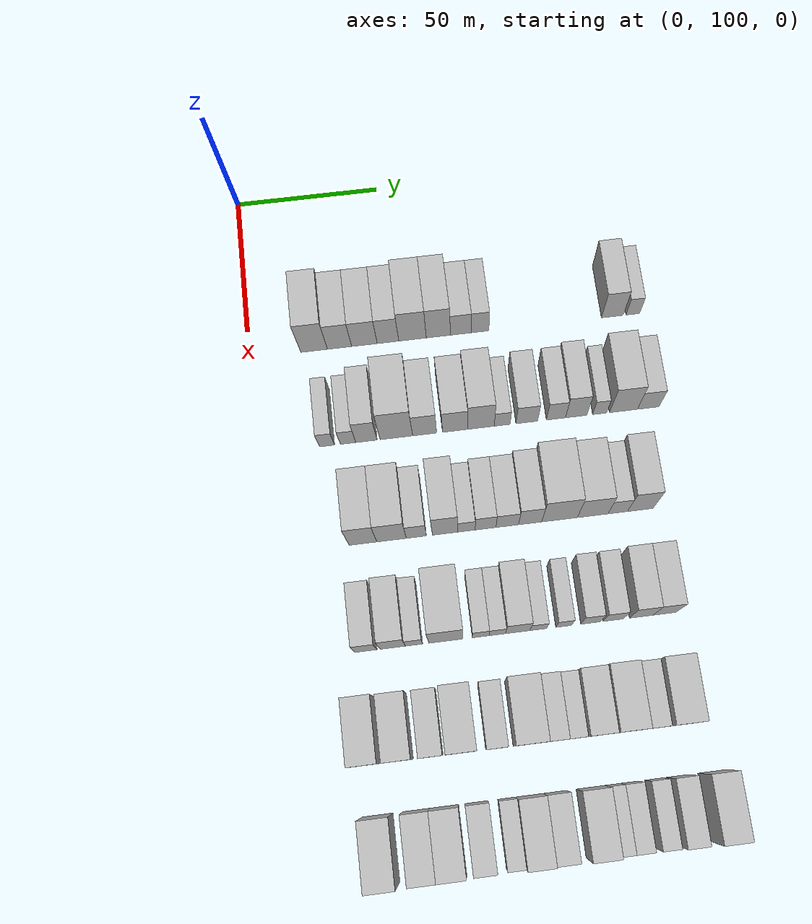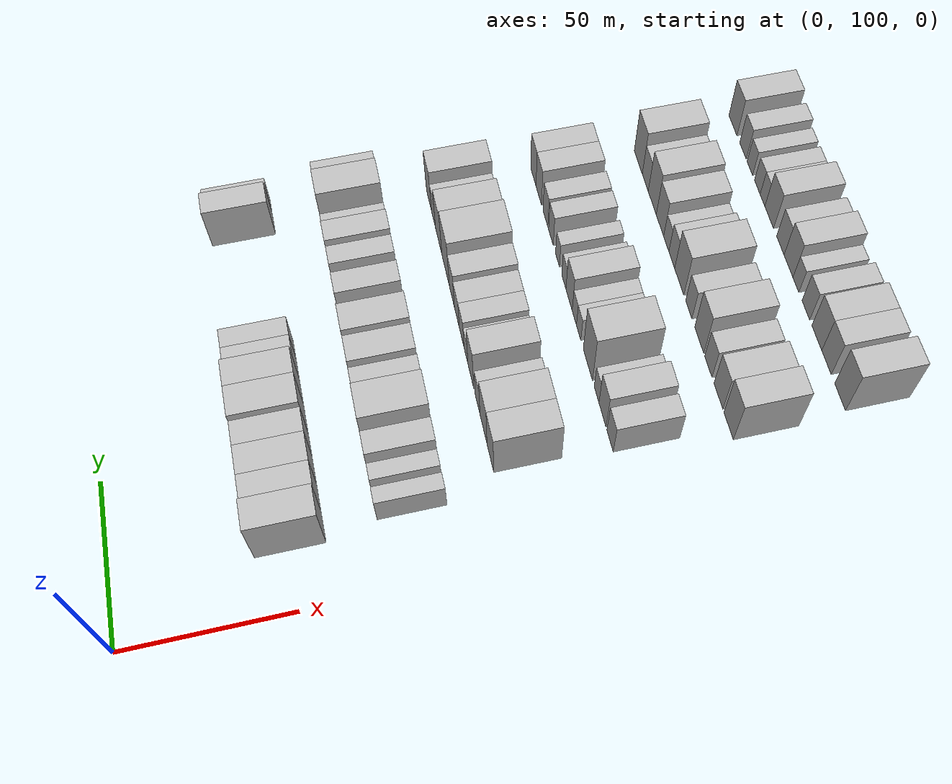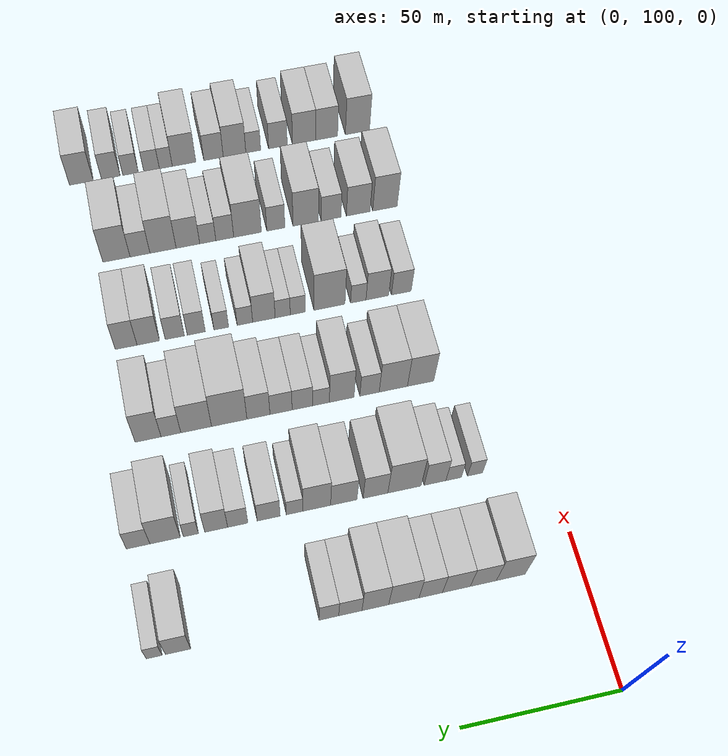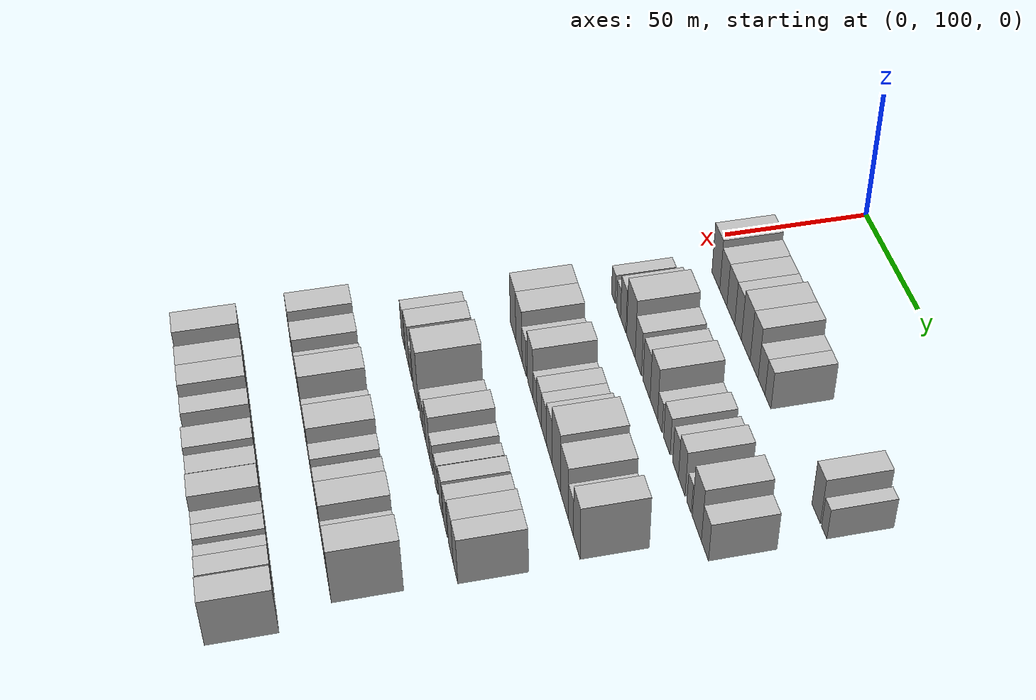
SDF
<sdf version="1.6">
 <world name="default">
  <model name="building_75">
   <static>1</static>
   <pose>50.0000 122.4611 0 0.000000 0.000000 0.000000</pose>
   <link name="link">
    <pose>0 0 10.50 0 0 0</pose>
    <collision name="collision"><geometry><box><size>20.0000 9.2811 21.0000</size></box></geometry></collision>
    <visual name="visual">
     <cast_shadows>0</cast_shadows>
     <geometry><box><size>20.0000 9.2811 21.0000</size></box></geometry>
     <material>
      <script>
       <uri>model://HANNAS_wall/materials/scripts</uri>
       <uri>model://HANNAS_wall/materials/textures</uri>
       <name>vrc/HANNAS_wall</name>
      </script>
     </material>
    </visual>
   </link>
  </model>
  <model name="building_76">
   <static>1</static>
   <pose>50.0000 131.3030 0 0.000000 0.000000 0.000000</pose>
   <link name="link">
    <pose>0 0 9.00 0 0 0</pose>
    <collision name="collision"><geometry><box><size>20.0000 8.4025 18.0000</size></box></geometry></collision>
    <visual name="visual">
     <cast_shadows>0</cast_shadows>
     <geometry><box><size>20.0000 8.4025 18.0000</size></box></geometry>
     <material>
      <script>
       <uri>model://HANNAS_wall/materials/scripts</uri>
       <uri>model://HANNAS_wall/materials/textures</uri>
       <name>vrc/HANNAS_wall</name>
      </script>
     </material>
    </visual>
   </link>
  </model>
  <model name="building_77">
   <static>1</static>
   <pose>50.0000 139.9452 0 0.000000 0.000000 0.000000</pose>
   <link name="link">
    <pose>0 0 9.00 0 0 0</pose>
    <collision name="collision"><geometry><box><size>20.0000 8.8820 18.0000</size></box></geometry></collision>
    <visual name="visual">
     <cast_shadows>0</cast_shadows>
     <geometry><box><size>20.0000 8.8820 18.0000</size></box></geometry>
     <material>
      <script>
       <uri>model://HANNAS_wall/materials/scripts</uri>
       <uri>model://HANNAS_wall/materials/textures</uri>
       <name>vrc/HANNAS_wall</name>
      </script>
     </material>
    </visual>
   </link>
  </model>
  <model name="building_78">
   <static>1</static>
   <pose>50.0000 148.1457 0 0.000000 0.000000 0.000000</pose>
   <link name="link">
    <pose>0 0 9.00 0 0 0</pose>
    <collision name="collision"><geometry><box><size>20.0000 7.5189 18.0000</size></box></geometry></collision>
    <visual name="visual">
     <cast_shadows>0</cast_shadows>
     <geometry><box><size>20.0000 7.5189 18.0000</size></box></geometry>
     <material>
      <script>
       <uri>model://HANNAS_wall/materials/scripts</uri>
       <uri>model://HANNAS_wall/materials/textures</uri>
       <name>vrc/HANNAS_wall</name>
      </script>
     </material>
    </visual>
   </link>
  </model>
  <model name="building_79">
   <static>1</static>
   <pose>50.0000 156.6984 0 0.000000 0.000000 0.000000</pose>
   <link name="link">
    <pose>0 0 10.50 0 0 0</pose>
    <collision name="collision"><geometry><box><size>20.0000 9.5865 21.0000</size></box></geometry></collision>
    <visual name="visual">
     <cast_shadows>0</cast_shadows>
     <geometry><box><size>20.0000 9.5865 21.0000</size></box></geometry>
     <material>
      <script>
       <uri>model://HANNAS_wall/materials/scripts</uri>
       <uri>model://HANNAS_wall/materials/textures</uri>
       <name>vrc/HANNAS_wall</name>
      </script>
     </material>
    </visual>
   </link>
  </model>
  <model name="building_80">
   <static>1</static>
   <pose>50.0000 165.7298 0 0.000000 0.000000 0.000000</pose>
   <link name="link">
    <pose>0 0 10.50 0 0 0</pose>
    <collision name="collision"><geometry><box><size>20.0000 8.4762 21.0000</size></box></geometry></collision>
    <visual name="visual">
     <cast_shadows>0</cast_shadows>
     <geometry><box><size>20.0000 8.4762 21.0000</size></box></geometry>
     <material>
      <script>
       <uri>model://HANNAS_wall/materials/scripts</uri>
       <uri>model://HANNAS_wall/materials/textures</uri>
       <name>vrc/HANNAS_wall</name>
      </script>
     </material>
    </visual>
   </link>
  </model>
  <model name="building_81">
   <static>1</static>
   <pose>50.0000 173.6136 0 0.000000 0.000000 0.000000</pose>
   <link name="link">
    <pose>0 0 7.50 0 0 0</pose>
    <collision name="collision"><geometry><box><size>20.0000 7.2915 15.0000</size></box></geometry></collision>
    <visual name="visual">
     <cast_shadows>0</cast_shadows>
     <geometry><box><size>20.0000 7.2915 15.0000</size></box></geometry>
     <material>
      <script>
       <uri>model://HANNAS_wall/materials/scripts</uri>
       <uri>model://HANNAS_wall/materials/textures</uri>
       <name>vrc/HANNAS_wall</name>
      </script>
     </material>
    </visual>
   </link>
  </model>
  <model name="building_82">
   <static>1</static>
   <pose>50.0000 180.3272 0 0.000000 0.000000 0.000000</pose>
   <link name="link">
    <pose>0 0 7.50 0 0 0</pose>
    <collision name="collision"><geometry><box><size>20.0000 6.1356 15.0000</size></box></geometry></collision>
    <visual name="visual">
     <cast_shadows>0</cast_shadows>
     <geometry><box><size>20.0000 6.1356 15.0000</size></box></geometry>
     <material>
      <script>
       <uri>model://HANNAS_wall/materials/scripts</uri>
       <uri>model://HANNAS_wall/materials/textures</uri>
       <name>vrc/HANNAS_wall</name>
      </script>
     </material>
    </visual>
   </link>
  </model>
  <model name="building_83">
   <static>1</static>
   <pose>50.0000 226.9549 0 0.000000 0.000000 0.000000</pose>
   <link name="link">
    <pose>0 0 9.00 0 0 0</pose>
    <collision name="collision"><geometry><box><size>20.0000 7.7066 18.0000</size></box></geometry></collision>
    <visual name="visual">
     <cast_shadows>0</cast_shadows>
     <geometry><box><size>20.0000 7.7066 18.0000</size></box></geometry>
     <material>
      <script>
       <uri>model://HANNAS_wall/materials/scripts</uri>
       <uri>model://HANNAS_wall/materials/textures</uri>
       <name>vrc/HANNAS_wall</name>
      </script>
     </material>
    </visual>
   </link>
  </model>
  <model name="building_84">
   <static>1</static>
   <pose>50.0000 234.2229 0 0.000000 0.000000 0.000000</pose>
   <link name="link">
    <pose>0 0 6.00 0 0 0</pose>
    <collision name="collision"><geometry><box><size>20.0000 4.8296 12.0000</size></box></geometry></collision>
    <visual name="visual">
     <cast_shadows>0</cast_shadows>
     <geometry><box><size>20.0000 4.8296 12.0000</size></box></geometry>
     <material>
      <script>
       <uri>model://HANNAS_wall/materials/scripts</uri>
       <uri>model://HANNAS_wall/materials/textures</uri>
       <name>vrc/HANNAS_wall</name>
      </script>
     </material>
    </visual>
   </link>
  </model>
  <model name="building_196">
   <static>1</static>
   <pose>85.0000 123.8743 0 0.000000 0.000000 0.000000</pose>
   <link name="link">
    <pose>0 0 6.00 0 0 0</pose>
    <collision name="collision"><geometry><box><size>20.0000 5.0671 12.0000</size></box></geometry></collision>
    <visual name="visual">
     <cast_shadows>0</cast_shadows>
     <geometry><box><size>20.0000 5.0671 12.0000</size></box></geometry>
     <material>
      <script>
       <uri>model://HANNAS_wall/materials/scripts</uri>
       <uri>model://HANNAS_wall/materials/textures</uri>
       <name>vrc/HANNAS_wall</name>
      </script>
     </material>
    </visual>
   </link>
  </model>
  <model name="building_197">
   <static>1</static>
   <pose>85.0000 131.0005 0 0.000000 0.000000 0.000000</pose>
   <link name="link">
    <pose>0 0 6.00 0 0 0</pose>
    <collision name="collision"><geometry><box><size>20.0000 5.1854 12.0000</size></box></geometry></collision>
    <visual name="visual">
     <cast_shadows>0</cast_shadows>
     <geometry><box><size>20.0000 5.1854 12.0000</size></box></geometry>
     <material>
      <script>
       <uri>model://HANNAS_wall/materials/scripts</uri>
       <uri>model://HANNAS_wall/materials/textures</uri>
       <name>vrc/HANNAS_wall</name>
      </script>
     </material>
    </visual>
   </link>
  </model>
  <model name="building_198">
   <static>1</static>
   <pose>85.0000 137.2162 0 0.000000 0.000000 0.000000</pose>
   <link name="link">
    <pose>0 0 9.00 0 0 0</pose>
    <collision name="collision"><geometry><box><size>20.0000 7.2460 18.0000</size></box></geometry></collision>
    <visual name="visual">
     <cast_shadows>0</cast_shadows>
     <geometry><box><size>20.0000 7.2460 18.0000</size></box></geometry>
     <material>
      <script>
       <uri>model://HANNAS_wall/materials/scripts</uri>
       <uri>model://HANNAS_wall/materials/textures</uri>
       <name>vrc/HANNAS_wall</name>
      </script>
     </material>
    </visual>
   </link>
  </model>
  <model name="building_199">
   <static>1</static>
   <pose>85.0000 147.3640 0 0.000000 0.000000 0.000000</pose>
   <link name="link">
    <pose>0 0 12.00 0 0 0</pose>
    <collision name="collision"><geometry><box><size>20.0000 11.0495 24.0000</size></box></geometry></collision>
    <visual name="visual">
     <cast_shadows>0</cast_shadows>
     <geometry><box><size>20.0000 11.0495 24.0000</size></box></geometry>
     <material>
      <script>
       <uri>model://HANNAS_wall/materials/scripts</uri>
       <uri>model://HANNAS_wall/materials/textures</uri>
       <name>vrc/HANNAS_wall</name>
      </script>
     </material>
    </visual>
   </link>
  </model>
  <model name="building_200">
   <static>1</static>
   <pose>85.0000 156.9674 0 0.000000 0.000000 0.000000</pose>
   <link name="link">
    <pose>0 0 9.00 0 0 0</pose>
    <collision name="collision"><geometry><box><size>20.0000 8.1573 18.0000</size></box></geometry></collision>
    <visual name="visual">
     <cast_shadows>0</cast_shadows>
     <geometry><box><size>20.0000 8.1573 18.0000</size></box></geometry>
     <material>
      <script>
       <uri>model://HANNAS_wall/materials/scripts</uri>
       <uri>model://HANNAS_wall/materials/textures</uri>
       <name>vrc/HANNAS_wall</name>
      </script>
     </material>
    </visual>
   </link>
  </model>
  <model name="building_201">
   <static>1</static>
   <pose>85.0000 167.3625 0 0.000000 0.000000 0.000000</pose>
   <link name="link">
    <pose>0 0 9.00 0 0 0</pose>
    <collision name="collision"><geometry><box><size>20.0000 8.6329 18.0000</size></box></geometry></collision>
    <visual name="visual">
     <cast_shadows>0</cast_shadows>
     <geometry><box><size>20.0000 8.6329 18.0000</size></box></geometry>
     <material>
      <script>
       <uri>model://HANNAS_wall/materials/scripts</uri>
       <uri>model://HANNAS_wall/materials/textures</uri>
       <name>vrc/HANNAS_wall</name>
      </script>
     </material>
    </visual>
   </link>
  </model>
  <model name="building_202">
   <static>1</static>
   <pose>85.0000 176.1991 0 0.000000 0.000000 0.000000</pose>
   <link name="link">
    <pose>0 0 10.50 0 0 0</pose>
    <collision name="collision"><geometry><box><size>20.0000 9.0403 21.0000</size></box></geometry></collision>
    <visual name="visual">
     <cast_shadows>0</cast_shadows>
     <geometry><box><size>20.0000 9.0403 21.0000</size></box></geometry>
     <material>
      <script>
       <uri>model://HANNAS_wall/materials/scripts</uri>
       <uri>model://HANNAS_wall/materials/textures</uri>
       <name>vrc/HANNAS_wall</name>
      </script>
     </material>
    </visual>
   </link>
  </model>
  <model name="building_203">
   <static>1</static>
   <pose>85.0000 183.4195 0 0.000000 0.000000 0.000000</pose>
   <link name="link">
    <pose>0 0 6.00 0 0 0</pose>
    <collision name="collision"><geometry><box><size>20.0000 5.4006 12.0000</size></box></geometry></collision>
    <visual name="visual">
     <cast_shadows>0</cast_shadows>
     <geometry><box><size>20.0000 5.4006 12.0000</size></box></geometry>
     <material>
      <script>
       <uri>model://HANNAS_wall/materials/scripts</uri>
       <uri>model://HANNAS_wall/materials/textures</uri>
       <name>vrc/HANNAS_wall</name>
      </script>
     </material>
    </visual>
   </link>
  </model>
  <model name="building_204">
   <static>1</static>
   <pose>85.0000 191.8361 0 0.000000 0.000000 0.000000</pose>
   <link name="link">
    <pose>0 0 7.50 0 0 0</pose>
    <collision name="collision"><geometry><box><size>20.0000 7.4327 15.0000</size></box></geometry></collision>
    <visual name="visual">
     <cast_shadows>0</cast_shadows>
     <geometry><box><size>20.0000 7.4327 15.0000</size></box></geometry>
     <material>
      <script>
       <uri>model://HANNAS_wall/materials/scripts</uri>
       <uri>model://HANNAS_wall/materials/textures</uri>
       <name>vrc/HANNAS_wall</name>
      </script>
     </material>
    </visual>
   </link>
  </model>
  <model name="building_205">
   <static>1</static>
   <pose>85.0000 201.8072 0 0.000000 0.000000 0.000000</pose>
   <link name="link">
    <pose>0 0 7.50 0 0 0</pose>
    <collision name="collision"><geometry><box><size>20.0000 6.5094 15.0000</size></box></geometry></collision>
    <visual name="visual">
     <cast_shadows>0</cast_shadows>
     <geometry><box><size>20.0000 6.5094 15.0000</size></box></geometry>
     <material>
      <script>
       <uri>model://HANNAS_wall/materials/scripts</uri>
       <uri>model://HANNAS_wall/materials/textures</uri>
       <name>vrc/HANNAS_wall</name>
      </script>
     </material>
    </visual>
   </link>
  </model>
  <model name="building_206">
   <static>1</static>
   <pose>85.0000 208.7417 0 0.000000 0.000000 0.000000</pose>
   <link name="link">
    <pose>0 0 9.00 0 0 0</pose>
    <collision name="collision"><geometry><box><size>20.0000 7.3595 18.0000</size></box></geometry></collision>
    <visual name="visual">
     <cast_shadows>0</cast_shadows>
     <geometry><box><size>20.0000 7.3595 18.0000</size></box></geometry>
     <material>
      <script>
       <uri>model://HANNAS_wall/materials/scripts</uri>
       <uri>model://HANNAS_wall/materials/textures</uri>
       <name>vrc/HANNAS_wall</name>
      </script>
     </material>
    </visual>
   </link>
  </model>
  <model name="building_207">
   <static>1</static>
   <pose>85.0000 216.8229 0 0.000000 0.000000 0.000000</pose>
   <link name="link">
    <pose>0 0 6.00 0 0 0</pose>
    <collision name="collision"><geometry><box><size>20.0000 4.8029 12.0000</size></box></geometry></collision>
    <visual name="visual">
     <cast_shadows>0</cast_shadows>
     <geometry><box><size>20.0000 4.8029 12.0000</size></box></geometry>
     <material>
      <script>
       <uri>model://HANNAS_wall/materials/scripts</uri>
       <uri>model://HANNAS_wall/materials/textures</uri>
       <name>vrc/HANNAS_wall</name>
      </script>
     </material>
    </visual>
   </link>
  </model>
  <model name="building_208">
   <static>1</static>
   <pose>85.0000 225.0727 0 0.000000 0.000000 0.000000</pose>
   <link name="link">
    <pose>0 0 10.50 0 0 0</pose>
    <collision name="collision"><geometry><box><size>20.0000 9.6968 21.0000</size></box></geometry></collision>
    <visual name="visual">
     <cast_shadows>0</cast_shadows>
     <geometry><box><size>20.0000 9.6968 21.0000</size></box></geometry>
     <material>
      <script>
       <uri>model://HANNAS_wall/materials/scripts</uri>
       <uri>model://HANNAS_wall/materials/textures</uri>
       <name>vrc/HANNAS_wall</name>
      </script>
     </material>
    </visual>
   </link>
  </model>
  <model name="building_209">
   <static>1</static>
   <pose>85.0000 233.6376 0 0.000000 0.000000 0.000000</pose>
   <link name="link">
    <pose>0 0 7.50 0 0 0</pose>
    <collision name="collision"><geometry><box><size>20.0000 7.4331 15.0000</size></box></geometry></collision>
    <visual name="visual">
     <cast_shadows>0</cast_shadows>
     <geometry><box><size>20.0000 7.4331 15.0000</size></box></geometry>
     <material>
      <script>
       <uri>model://HANNAS_wall/materials/scripts</uri>
       <uri>model://HANNAS_wall/materials/textures</uri>
       <name>vrc/HANNAS_wall</name>
      </script>
     </material>
    </visual>
   </link>
  </model>
  <model name="building_326">
   <static>1</static>
   <pose>120.0000 132.6634 0 0.000000 0.000000 0.000000</pose>
   <link name="link">
    <pose>0 0 10.50 0 0 0</pose>
    <collision name="collision"><geometry><box><size>20.0000 9.1099 21.0000</size></box></geometry></collision>
    <visual name="visual">
     <cast_shadows>0</cast_shadows>
     <geometry><box><size>20.0000 9.1099 21.0000</size></box></geometry>
     <material>
      <script>
       <uri>model://HANNAS_wall/materials/scripts</uri>
       <uri>model://HANNAS_wall/materials/textures</uri>
       <name>vrc/HANNAS_wall</name>
      </script>
     </material>
    </visual>
   </link>
  </model>
  <model name="building_327">
   <static>1</static>
   <pose>120.0000 142.0886 0 0.000000 0.000000 0.000000</pose>
   <link name="link">
    <pose>0 0 10.50 0 0 0</pose>
    <collision name="collision"><geometry><box><size>20.0000 9.7404 21.0000</size></box></geometry></collision>
    <visual name="visual">
     <cast_shadows>0</cast_shadows>
     <geometry><box><size>20.0000 9.7404 21.0000</size></box></geometry>
     <material>
      <script>
       <uri>model://HANNAS_wall/materials/scripts</uri>
       <uri>model://HANNAS_wall/materials/textures</uri>
       <name>vrc/HANNAS_wall</name>
      </script>
     </material>
    </visual>
   </link>
  </model>
  <model name="building_328">
   <static>1</static>
   <pose>120.0000 150.2772 0 0.000000 0.000000 0.000000</pose>
   <link name="link">
    <pose>0 0 7.50 0 0 0</pose>
    <collision name="collision"><geometry><box><size>20.0000 6.6367 15.0000</size></box></geometry></collision>
    <visual name="visual">
     <cast_shadows>0</cast_shadows>
     <geometry><box><size>20.0000 6.6367 15.0000</size></box></geometry>
     <material>
      <script>
       <uri>model://HANNAS_wall/materials/scripts</uri>
       <uri>model://HANNAS_wall/materials/textures</uri>
       <name>vrc/HANNAS_wall</name>
      </script>
     </material>
    </visual>
   </link>
  </model>
  <model name="building_329">
   <static>1</static>
   <pose>120.0000 159.8151 0 0.000000 0.000000 0.000000</pose>
   <link name="link">
    <pose>0 0 10.50 0 0 0</pose>
    <collision name="collision"><geometry><box><size>20.0000 8.4390 21.0000</size></box></geometry></collision>
    <visual name="visual">
     <cast_shadows>0</cast_shadows>
     <geometry><box><size>20.0000 8.4390 21.0000</size></box></geometry>
     <material>
      <script>
       <uri>model://HANNAS_wall/materials/scripts</uri>
       <uri>model://HANNAS_wall/materials/textures</uri>
       <name>vrc/HANNAS_wall</name>
      </script>
     </material>
    </visual>
   </link>
  </model>
  <model name="building_330">
   <static>1</static>
   <pose>120.0000 166.8922 0 0.000000 0.000000 0.000000</pose>
   <link name="link">
    <pose>0 0 6.00 0 0 0</pose>
    <collision name="collision"><geometry><box><size>20.0000 5.7152 12.0000</size></box></geometry></collision>
    <visual name="visual">
     <cast_shadows>0</cast_shadows>
     <geometry><box><size>20.0000 5.7152 12.0000</size></box></geometry>
     <material>
      <script>
       <uri>model://HANNAS_wall/materials/scripts</uri>
       <uri>model://HANNAS_wall/materials/textures</uri>
       <name>vrc/HANNAS_wall</name>
      </script>
     </material>
    </visual>
   </link>
  </model>
  <model name="building_331">
   <static>1</static>
   <pose>120.0000 173.2070 0 0.000000 0.000000 0.000000</pose>
   <link name="link">
    <pose>0 0 7.50 0 0 0</pose>
    <collision name="collision"><geometry><box><size>20.0000 6.9143 15.0000</size></box></geometry></collision>
    <visual name="visual">
     <cast_shadows>0</cast_shadows>
     <geometry><box><size>20.0000 6.9143 15.0000</size></box></geometry>
     <material>
      <script>
       <uri>model://HANNAS_wall/materials/scripts</uri>
       <uri>model://HANNAS_wall/materials/textures</uri>
       <name>vrc/HANNAS_wall</name>
      </script>
     </material>
    </visual>
   </link>
  </model>
  <model name="building_332">
   <static>1</static>
   <pose>120.0000 180.4108 0 0.000000 0.000000 0.000000</pose>
   <link name="link">
    <pose>0 0 7.50 0 0 0</pose>
    <collision name="collision"><geometry><box><size>20.0000 7.4933 15.0000</size></box></geometry></collision>
    <visual name="visual">
     <cast_shadows>0</cast_shadows>
     <geometry><box><size>20.0000 7.4933 15.0000</size></box></geometry>
     <material>
      <script>
       <uri>model://HANNAS_wall/materials/scripts</uri>
       <uri>model://HANNAS_wall/materials/textures</uri>
       <name>vrc/HANNAS_wall</name>
      </script>
     </material>
    </visual>
   </link>
  </model>
  <model name="building_333">
   <static>1</static>
   <pose>120.0000 188.0334 0 0.000000 0.000000 0.000000</pose>
   <link name="link">
    <pose>0 0 9.00 0 0 0</pose>
    <collision name="collision"><geometry><box><size>20.0000 7.7519 18.0000</size></box></geometry></collision>
    <visual name="visual">
     <cast_shadows>0</cast_shadows>
     <geometry><box><size>20.0000 7.7519 18.0000</size></box></geometry>
     <material>
      <script>
       <uri>model://HANNAS_wall/materials/scripts</uri>
       <uri>model://HANNAS_wall/materials/textures</uri>
       <name>vrc/HANNAS_wall</name>
      </script>
     </material>
    </visual>
   </link>
  </model>
  <model name="building_334">
   <static>1</static>
   <pose>120.0000 197.8483 0 0.000000 0.000000 0.000000</pose>
   <link name="link">
    <pose>0 0 12.00 0 0 0</pose>
    <collision name="collision"><geometry><box><size>20.0000 11.8780 24.0000</size></box></geometry></collision>
    <visual name="visual">
     <cast_shadows>0</cast_shadows>
     <geometry><box><size>20.0000 11.8780 24.0000</size></box></geometry>
     <material>
      <script>
       <uri>model://HANNAS_wall/materials/scripts</uri>
       <uri>model://HANNAS_wall/materials/textures</uri>
       <name>vrc/HANNAS_wall</name>
      </script>
     </material>
    </visual>
   </link>
  </model>
  <model name="building_335">
   <static>1</static>
   <pose>120.0000 208.9087 0 0.000000 0.000000 0.000000</pose>
   <link name="link">
    <pose>0 0 10.50 0 0 0</pose>
    <collision name="collision"><geometry><box><size>20.0000 10.2428 21.0000</size></box></geometry></collision>
    <visual name="visual">
     <cast_shadows>0</cast_shadows>
     <geometry><box><size>20.0000 10.2428 21.0000</size></box></geometry>
     <material>
      <script>
       <uri>model://HANNAS_wall/materials/scripts</uri>
       <uri>model://HANNAS_wall/materials/textures</uri>
       <name>vrc/HANNAS_wall</name>
      </script>
     </material>
    </visual>
   </link>
  </model>
  <model name="building_336">
   <static>1</static>
   <pose>120.0000 217.3041 0 0.000000 0.000000 0.000000</pose>
   <link name="link">
    <pose>0 0 7.50 0 0 0</pose>
    <collision name="collision"><geometry><box><size>20.0000 6.5480 15.0000</size></box></geometry></collision>
    <visual name="visual">
     <cast_shadows>0</cast_shadows>
     <geometry><box><size>20.0000 6.5480 15.0000</size></box></geometry>
     <material>
      <script>
       <uri>model://HANNAS_wall/materials/scripts</uri>
       <uri>model://HANNAS_wall/materials/textures</uri>
       <name>vrc/HANNAS_wall</name>
      </script>
     </material>
    </visual>
   </link>
  </model>
  <model name="building_337">
   <static>1</static>
   <pose>120.0000 224.8826 0 0.000000 0.000000 0.000000</pose>
   <link name="link">
    <pose>0 0 10.50 0 0 0</pose>
    <collision name="collision"><geometry><box><size>20.0000 8.6091 21.0000</size></box></geometry></collision>
    <visual name="visual">
     <cast_shadows>0</cast_shadows>
     <geometry><box><size>20.0000 8.6091 21.0000</size></box></geometry>
     <material>
      <script>
       <uri>model://HANNAS_wall/materials/scripts</uri>
       <uri>model://HANNAS_wall/materials/textures</uri>
       <name>vrc/HANNAS_wall</name>
      </script>
     </material>
    </visual>
   </link>
  </model>
  <model name="building_445">
   <static>1</static>
   <pose>155.0000 130.2515 0 0.000000 0.000000 0.000000</pose>
   <link name="link">
    <pose>0 0 7.50 0 0 0</pose>
    <collision name="collision"><geometry><box><size>20.0000 7.0779 15.0000</size></box></geometry></collision>
    <visual name="visual">
     <cast_shadows>0</cast_shadows>
     <geometry><box><size>20.0000 7.0779 15.0000</size></box></geometry>
     <material>
      <script>
       <uri>model://HANNAS_wall/materials/scripts</uri>
       <uri>model://HANNAS_wall/materials/textures</uri>
       <name>vrc/HANNAS_wall</name>
      </script>
     </material>
    </visual>
   </link>
  </model>
  <model name="building_446">
   <static>1</static>
   <pose>155.0000 138.8430 0 0.000000 0.000000 0.000000</pose>
   <link name="link">
    <pose>0 0 9.00 0 0 0</pose>
    <collision name="collision"><geometry><box><size>20.0000 8.1051 18.0000</size></box></geometry></collision>
    <visual name="visual">
     <cast_shadows>0</cast_shadows>
     <geometry><box><size>20.0000 8.1051 18.0000</size></box></geometry>
     <material>
      <script>
       <uri>model://HANNAS_wall/materials/scripts</uri>
       <uri>model://HANNAS_wall/materials/textures</uri>
       <name>vrc/HANNAS_wall</name>
      </script>
     </material>
    </visual>
   </link>
  </model>
  <model name="building_447">
   <static>1</static>
   <pose>155.0000 145.6486 0 0.000000 0.000000 0.000000</pose>
   <link name="link">
    <pose>0 0 6.00 0 0 0</pose>
    <collision name="collision"><geometry><box><size>20.0000 5.5061 12.0000</size></box></geometry></collision>
    <visual name="visual">
     <cast_shadows>0</cast_shadows>
     <geometry><box><size>20.0000 5.5061 12.0000</size></box></geometry>
     <material>
      <script>
       <uri>model://HANNAS_wall/materials/scripts</uri>
       <uri>model://HANNAS_wall/materials/textures</uri>
       <name>vrc/HANNAS_wall</name>
      </script>
     </material>
    </visual>
   </link>
  </model>
  <model name="building_448">
   <static>1</static>
   <pose>155.0000 155.8973 0 0.000000 0.000000 0.000000</pose>
   <link name="link">
    <pose>0 0 12.00 0 0 0</pose>
    <collision name="collision"><geometry><box><size>20.0000 10.9913 24.0000</size></box></geometry></collision>
    <visual name="visual">
     <cast_shadows>0</cast_shadows>
     <geometry><box><size>20.0000 10.9913 24.0000</size></box></geometry>
     <material>
      <script>
       <uri>model://HANNAS_wall/materials/scripts</uri>
       <uri>model://HANNAS_wall/materials/textures</uri>
       <name>vrc/HANNAS_wall</name>
      </script>
     </material>
    </visual>
   </link>
  </model>
  <model name="building_449">
   <static>1</static>
   <pose>155.0000 167.0784 0 0.000000 0.000000 0.000000</pose>
   <link name="link">
    <pose>0 0 6.00 0 0 0</pose>
    <collision name="collision"><geometry><box><size>20.0000 5.3709 12.0000</size></box></geometry></collision>
    <visual name="visual">
     <cast_shadows>0</cast_shadows>
     <geometry><box><size>20.0000 5.3709 12.0000</size></box></geometry>
     <material>
      <script>
       <uri>model://HANNAS_wall/materials/scripts</uri>
       <uri>model://HANNAS_wall/materials/textures</uri>
       <name>vrc/HANNAS_wall</name>
      </script>
     </material>
    </visual>
   </link>
  </model>
  <model name="building_450">
   <static>1</static>
   <pose>155.0000 172.4253 0 0.000000 0.000000 0.000000</pose>
   <link name="link">
    <pose>0 0 6.00 0 0 0</pose>
    <collision name="collision"><geometry><box><size>20.0000 5.3228 12.0000</size></box></geometry></collision>
    <visual name="visual">
     <cast_shadows>0</cast_shadows>
     <geometry><box><size>20.0000 5.3228 12.0000</size></box></geometry>
     <material>
      <script>
       <uri>model://HANNAS_wall/materials/scripts</uri>
       <uri>model://HANNAS_wall/materials/textures</uri>
       <name>vrc/HANNAS_wall</name>
      </script>
     </material>
    </visual>
   </link>
  </model>
  <model name="building_451">
   <static>1</static>
   <pose>155.0000 179.0269 0 0.000000 0.000000 0.000000</pose>
   <link name="link">
    <pose>0 0 9.00 0 0 0</pose>
    <collision name="collision"><geometry><box><size>20.0000 7.8803 18.0000</size></box></geometry></collision>
    <visual name="visual">
     <cast_shadows>0</cast_shadows>
     <geometry><box><size>20.0000 7.8803 18.0000</size></box></geometry>
     <material>
      <script>
       <uri>model://HANNAS_wall/materials/scripts</uri>
       <uri>model://HANNAS_wall/materials/textures</uri>
       <name>vrc/HANNAS_wall</name>
      </script>
     </material>
    </visual>
   </link>
  </model>
  <model name="building_452">
   <static>1</static>
   <pose>155.0000 185.6780 0 0.000000 0.000000 0.000000</pose>
   <link name="link">
    <pose>0 0 6.00 0 0 0</pose>
    <collision name="collision"><geometry><box><size>20.0000 5.4219 12.0000</size></box></geometry></collision>
    <visual name="visual">
     <cast_shadows>0</cast_shadows>
     <geometry><box><size>20.0000 5.4219 12.0000</size></box></geometry>
     <material>
      <script>
       <uri>model://HANNAS_wall/materials/scripts</uri>
       <uri>model://HANNAS_wall/materials/textures</uri>
       <name>vrc/HANNAS_wall</name>
      </script>
     </material>
    </visual>
   </link>
  </model>
  <model name="building_453">
   <static>1</static>
   <pose>155.0000 193.9362 0 0.000000 0.000000 0.000000</pose>
   <link name="link">
    <pose>0 0 6.00 0 0 0</pose>
    <collision name="collision"><geometry><box><size>20.0000 5.0945 12.0000</size></box></geometry></collision>
    <visual name="visual">
     <cast_shadows>0</cast_shadows>
     <geometry><box><size>20.0000 5.0945 12.0000</size></box></geometry>
     <material>
      <script>
       <uri>model://HANNAS_wall/materials/scripts</uri>
       <uri>model://HANNAS_wall/materials/textures</uri>
       <name>vrc/HANNAS_wall</name>
      </script>
     </material>
    </visual>
   </link>
  </model>
  <model name="building_454">
   <static>1</static>
   <pose>155.0000 202.6224 0 0.000000 0.000000 0.000000</pose>
   <link name="link">
    <pose>0 0 7.50 0 0 0</pose>
    <collision name="collision"><geometry><box><size>20.0000 6.2780 15.0000</size></box></geometry></collision>
    <visual name="visual">
     <cast_shadows>0</cast_shadows>
     <geometry><box><size>20.0000 6.2780 15.0000</size></box></geometry>
     <material>
      <script>
       <uri>model://HANNAS_wall/materials/scripts</uri>
       <uri>model://HANNAS_wall/materials/textures</uri>
       <name>vrc/HANNAS_wall</name>
      </script>
     </material>
    </visual>
   </link>
  </model>
  <model name="building_455">
   <static>1</static>
   <pose>155.0000 210.0587 0 0.000000 0.000000 0.000000</pose>
   <link name="link">
    <pose>0 0 7.50 0 0 0</pose>
    <collision name="collision"><geometry><box><size>20.0000 6.5946 15.0000</size></box></geometry></collision>
    <visual name="visual">
     <cast_shadows>0</cast_shadows>
     <geometry><box><size>20.0000 6.5946 15.0000</size></box></geometry>
     <material>
      <script>
       <uri>model://HANNAS_wall/materials/scripts</uri>
       <uri>model://HANNAS_wall/materials/textures</uri>
       <name>vrc/HANNAS_wall</name>
      </script>
     </material>
    </visual>
   </link>
  </model>
  <model name="building_456">
   <static>1</static>
   <pose>155.0000 219.2146 0 0.000000 0.000000 0.000000</pose>
   <link name="link">
    <pose>0 0 9.00 0 0 0</pose>
    <collision name="collision"><geometry><box><size>20.0000 7.7172 18.0000</size></box></geometry></collision>
    <visual name="visual">
     <cast_shadows>0</cast_shadows>
     <geometry><box><size>20.0000 7.7172 18.0000</size></box></geometry>
     <material>
      <script>
       <uri>model://HANNAS_wall/materials/scripts</uri>
       <uri>model://HANNAS_wall/materials/textures</uri>
       <name>vrc/HANNAS_wall</name>
      </script>
     </material>
    </visual>
   </link>
  </model>
  <model name="building_457">
   <static>1</static>
   <pose>155.0000 226.8182 0 0.000000 0.000000 0.000000</pose>
   <link name="link">
    <pose>0 0 9.00 0 0 0</pose>
    <collision name="collision"><geometry><box><size>20.0000 7.4898 18.0000</size></box></geometry></collision>
    <visual name="visual">
     <cast_shadows>0</cast_shadows>
     <geometry><box><size>20.0000 7.4898 18.0000</size></box></geometry>
     <material>
      <script>
       <uri>model://HANNAS_wall/materials/scripts</uri>
       <uri>model://HANNAS_wall/materials/textures</uri>
       <name>vrc/HANNAS_wall</name>
      </script>
     </material>
    </visual>
   </link>
  </model>
  <model name="building_573">
   <static>1</static>
   <pose>190.0000 127.2748 0 0.000000 0.000000 0.000000</pose>
   <link name="link">
    <pose>0 0 10.50 0 0 0</pose>
    <collision name="collision"><geometry><box><size>20.0000 9.0663 21.0000</size></box></geometry></collision>
    <visual name="visual">
     <cast_shadows>0</cast_shadows>
     <geometry><box><size>20.0000 9.0663 21.0000</size></box></geometry>
     <material>
      <script>
       <uri>model://HANNAS_wall/materials/scripts</uri>
       <uri>model://HANNAS_wall/materials/textures</uri>
       <name>vrc/HANNAS_wall</name>
      </script>
     </material>
    </visual>
   </link>
  </model>
  <model name="building_574">
   <static>1</static>
   <pose>190.0000 137.1905 0 0.000000 0.000000 0.000000</pose>
   <link name="link">
    <pose>0 0 9.00 0 0 0</pose>
    <collision name="collision"><geometry><box><size>20.0000 8.7652 18.0000</size></box></geometry></collision>
    <visual name="visual">
     <cast_shadows>0</cast_shadows>
     <geometry><box><size>20.0000 8.7652 18.0000</size></box></geometry>
     <material>
      <script>
       <uri>model://HANNAS_wall/materials/scripts</uri>
       <uri>model://HANNAS_wall/materials/textures</uri>
       <name>vrc/HANNAS_wall</name>
      </script>
     </material>
    </visual>
   </link>
  </model>
  <model name="building_575">
   <static>1</static>
   <pose>190.0000 147.2318 0 0.000000 0.000000 0.000000</pose>
   <link name="link">
    <pose>0 0 7.50 0 0 0</pose>
    <collision name="collision"><geometry><box><size>20.0000 7.3172 15.0000</size></box></geometry></collision>
    <visual name="visual">
     <cast_shadows>0</cast_shadows>
     <geometry><box><size>20.0000 7.3172 15.0000</size></box></geometry>
     <material>
      <script>
       <uri>model://HANNAS_wall/materials/scripts</uri>
       <uri>model://HANNAS_wall/materials/textures</uri>
       <name>vrc/HANNAS_wall</name>
      </script>
     </material>
    </visual>
   </link>
  </model>
  <model name="building_576">
   <static>1</static>
   <pose>190.0000 156.5494 0 0.000000 0.000000 0.000000</pose>
   <link name="link">
    <pose>0 0 10.50 0 0 0</pose>
    <collision name="collision"><geometry><box><size>20.0000 9.3180 21.0000</size></box></geometry></collision>
    <visual name="visual">
     <cast_shadows>0</cast_shadows>
     <geometry><box><size>20.0000 9.3180 21.0000</size></box></geometry>
     <material>
      <script>
       <uri>model://HANNAS_wall/materials/scripts</uri>
       <uri>model://HANNAS_wall/materials/textures</uri>
       <name>vrc/HANNAS_wall</name>
      </script>
     </material>
    </visual>
   </link>
  </model>
  <model name="building_577">
   <static>1</static>
   <pose>190.0000 167.5016 0 0.000000 0.000000 0.000000</pose>
   <link name="link">
    <pose>0 0 7.50 0 0 0</pose>
    <collision name="collision"><geometry><box><size>20.0000 6.5865 15.0000</size></box></geometry></collision>
    <visual name="visual">
     <cast_shadows>0</cast_shadows>
     <geometry><box><size>20.0000 6.5865 15.0000</size></box></geometry>
     <material>
      <script>
       <uri>model://HANNAS_wall/materials/scripts</uri>
       <uri>model://HANNAS_wall/materials/textures</uri>
       <name>vrc/HANNAS_wall</name>
      </script>
     </material>
    </visual>
   </link>
  </model>
  <model name="building_578">
   <static>1</static>
   <pose>190.0000 177.8070 0 0.000000 0.000000 0.000000</pose>
   <link name="link">
    <pose>0 0 10.50 0 0 0</pose>
    <collision name="collision"><geometry><box><size>20.0000 10.0242 21.0000</size></box></geometry></collision>
    <visual name="visual">
     <cast_shadows>0</cast_shadows>
     <geometry><box><size>20.0000 10.0242 21.0000</size></box></geometry>
     <material>
      <script>
       <uri>model://HANNAS_wall/materials/scripts</uri>
       <uri>model://HANNAS_wall/materials/textures</uri>
       <name>vrc/HANNAS_wall</name>
      </script>
     </material>
    </visual>
   </link>
  </model>
  <model name="building_579">
   <static>1</static>
   <pose>190.0000 186.0618 0 0.000000 0.000000 0.000000</pose>
   <link name="link">
    <pose>0 0 7.50 0 0 0</pose>
    <collision name="collision"><geometry><box><size>20.0000 6.4854 15.0000</size></box></geometry></collision>
    <visual name="visual">
     <cast_shadows>0</cast_shadows>
     <geometry><box><size>20.0000 6.4854 15.0000</size></box></geometry>
     <material>
      <script>
       <uri>model://HANNAS_wall/materials/scripts</uri>
       <uri>model://HANNAS_wall/materials/textures</uri>
       <name>vrc/HANNAS_wall</name>
      </script>
     </material>
    </visual>
   </link>
  </model>
  <model name="building_580">
   <static>1</static>
   <pose>190.0000 192.2257 0 0.000000 0.000000 0.000000</pose>
   <link name="link">
    <pose>0 0 6.00 0 0 0</pose>
    <collision name="collision"><geometry><box><size>20.0000 5.8425 12.0000</size></box></geometry></collision>
    <visual name="visual">
     <cast_shadows>0</cast_shadows>
     <geometry><box><size>20.0000 5.8425 12.0000</size></box></geometry>
     <material>
      <script>
       <uri>model://HANNAS_wall/materials/scripts</uri>
       <uri>model://HANNAS_wall/materials/textures</uri>
       <name>vrc/HANNAS_wall</name>
      </script>
     </material>
    </visual>
   </link>
  </model>
  <model name="building_581">
   <static>1</static>
   <pose>190.0000 199.3875 0 0.000000 0.000000 0.000000</pose>
   <link name="link">
    <pose>0 0 9.00 0 0 0</pose>
    <collision name="collision"><geometry><box><size>20.0000 8.4811 18.0000</size></box></geometry></collision>
    <visual name="visual">
     <cast_shadows>0</cast_shadows>
     <geometry><box><size>20.0000 8.4811 18.0000</size></box></geometry>
     <material>
      <script>
       <uri>model://HANNAS_wall/materials/scripts</uri>
       <uri>model://HANNAS_wall/materials/textures</uri>
       <name>vrc/HANNAS_wall</name>
      </script>
     </material>
    </visual>
   </link>
  </model>
  <model name="building_582">
   <static>1</static>
   <pose>190.0000 208.3263 0 0.000000 0.000000 0.000000</pose>
   <link name="link">
    <pose>0 0 10.50 0 0 0</pose>
    <collision name="collision"><geometry><box><size>20.0000 9.3964 21.0000</size></box></geometry></collision>
    <visual name="visual">
     <cast_shadows>0</cast_shadows>
     <geometry><box><size>20.0000 9.3964 21.0000</size></box></geometry>
     <material>
      <script>
       <uri>model://HANNAS_wall/materials/scripts</uri>
       <uri>model://HANNAS_wall/materials/textures</uri>
       <name>vrc/HANNAS_wall</name>
      </script>
     </material>
    </visual>
   </link>
  </model>
  <model name="building_583">
   <static>1</static>
   <pose>190.0000 216.5724 0 0.000000 0.000000 0.000000</pose>
   <link name="link">
    <pose>0 0 7.50 0 0 0</pose>
    <collision name="collision"><geometry><box><size>20.0000 7.0959 15.0000</size></box></geometry></collision>
    <visual name="visual">
     <cast_shadows>0</cast_shadows>
     <geometry><box><size>20.0000 7.0959 15.0000</size></box></geometry>
     <material>
      <script>
       <uri>model://HANNAS_wall/materials/scripts</uri>
       <uri>model://HANNAS_wall/materials/textures</uri>
       <name>vrc/HANNAS_wall</name>
      </script>
     </material>
    </visual>
   </link>
  </model>
  <model name="building_584">
   <static>1</static>
   <pose>190.0000 224.9612 0 0.000000 0.000000 0.000000</pose>
   <link name="link">
    <pose>0 0 10.50 0 0 0</pose>
    <collision name="collision"><geometry><box><size>20.0000 9.6816 21.0000</size></box></geometry></collision>
    <visual name="visual">
     <cast_shadows>0</cast_shadows>
     <geometry><box><size>20.0000 9.6816 21.0000</size></box></geometry>
     <material>
      <script>
       <uri>model://HANNAS_wall/materials/scripts</uri>
       <uri>model://HANNAS_wall/materials/textures</uri>
       <name>vrc/HANNAS_wall</name>
      </script>
     </material>
    </visual>
   </link>
  </model>
  <model name="building_692">
   <static>1</static>
   <pose>225.0000 129.0086 0 0.000000 0.000000 0.000000</pose>
   <link name="link">
    <pose>0 0 10.50 0 0 0</pose>
    <collision name="collision"><geometry><box><size>20.0000 9.2704 21.0000</size></box></geometry></collision>
    <visual name="visual">
     <cast_shadows>0</cast_shadows>
     <geometry><box><size>20.0000 9.2704 21.0000</size></box></geometry>
     <material>
      <script>
       <uri>model://HANNAS_wall/materials/scripts</uri>
       <uri>model://HANNAS_wall/materials/textures</uri>
       <name>vrc/HANNAS_wall</name>
      </script>
     </material>
    </visual>
   </link>
  </model>
  <model name="building_693">
   <static>1</static>
   <pose>225.0000 140.8129 0 0.000000 0.000000 0.000000</pose>
   <link name="link">
    <pose>0 0 9.00 0 0 0</pose>
    <collision name="collision"><geometry><box><size>20.0000 8.3381 18.0000</size></box></geometry></collision>
    <visual name="visual">
     <cast_shadows>0</cast_shadows>
     <geometry><box><size>20.0000 8.3381 18.0000</size></box></geometry>
     <material>
      <script>
       <uri>model://HANNAS_wall/materials/scripts</uri>
       <uri>model://HANNAS_wall/materials/textures</uri>
       <name>vrc/HANNAS_wall</name>
      </script>
     </material>
    </visual>
   </link>
  </model>
  <model name="building_694">
   <static>1</static>
   <pose>225.0000 149.4190 0 0.000000 0.000000 0.000000</pose>
   <link name="link">
    <pose>0 0 9.00 0 0 0</pose>
    <collision name="collision"><geometry><box><size>20.0000 8.8742 18.0000</size></box></geometry></collision>
    <visual name="visual">
     <cast_shadows>0</cast_shadows>
     <geometry><box><size>20.0000 8.8742 18.0000</size></box></geometry>
     <material>
      <script>
       <uri>model://HANNAS_wall/materials/scripts</uri>
       <uri>model://HANNAS_wall/materials/textures</uri>
       <name>vrc/HANNAS_wall</name>
      </script>
     </material>
    </visual>
   </link>
  </model>
  <model name="building_695">
   <static>1</static>
   <pose>225.0000 159.3855 0 0.000000 0.000000 0.000000</pose>
   <link name="link">
    <pose>0 0 7.50 0 0 0</pose>
    <collision name="collision"><geometry><box><size>20.0000 7.0587 15.0000</size></box></geometry></collision>
    <visual name="visual">
     <cast_shadows>0</cast_shadows>
     <geometry><box><size>20.0000 7.0587 15.0000</size></box></geometry>
     <material>
      <script>
       <uri>model://HANNAS_wall/materials/scripts</uri>
       <uri>model://HANNAS_wall/materials/textures</uri>
       <name>vrc/HANNAS_wall</name>
      </script>
     </material>
    </visual>
   </link>
  </model>
  <model name="building_696">
   <static>1</static>
   <pose>225.0000 168.7076 0 0.000000 0.000000 0.000000</pose>
   <link name="link">
    <pose>0 0 6.00 0 0 0</pose>
    <collision name="collision"><geometry><box><size>20.0000 5.5855 12.0000</size></box></geometry></collision>
    <visual name="visual">
     <cast_shadows>0</cast_shadows>
     <geometry><box><size>20.0000 5.5855 12.0000</size></box></geometry>
     <material>
      <script>
       <uri>model://HANNAS_wall/materials/scripts</uri>
       <uri>model://HANNAS_wall/materials/textures</uri>
       <name>vrc/HANNAS_wall</name>
      </script>
     </material>
    </visual>
   </link>
  </model>
  <model name="building_697">
   <static>1</static>
   <pose>225.0000 175.7503 0 0.000000 0.000000 0.000000</pose>
   <link name="link">
    <pose>0 0 9.00 0 0 0</pose>
    <collision name="collision"><geometry><box><size>20.0000 8.4999 18.0000</size></box></geometry></collision>
    <visual name="visual">
     <cast_shadows>0</cast_shadows>
     <geometry><box><size>20.0000 8.4999 18.0000</size></box></geometry>
     <material>
      <script>
       <uri>model://HANNAS_wall/materials/scripts</uri>
       <uri>model://HANNAS_wall/materials/textures</uri>
       <name>vrc/HANNAS_wall</name>
      </script>
     </material>
    </visual>
   </link>
  </model>
  <model name="building_698">
   <static>1</static>
   <pose>225.0000 183.6468 0 0.000000 0.000000 0.000000</pose>
   <link name="link">
    <pose>0 0 7.50 0 0 0</pose>
    <collision name="collision"><geometry><box><size>20.0000 7.2931 15.0000</size></box></geometry></collision>
    <visual name="visual">
     <cast_shadows>0</cast_shadows>
     <geometry><box><size>20.0000 7.2931 15.0000</size></box></geometry>
     <material>
      <script>
       <uri>model://HANNAS_wall/materials/scripts</uri>
       <uri>model://HANNAS_wall/materials/textures</uri>
       <name>vrc/HANNAS_wall</name>
      </script>
     </material>
    </visual>
   </link>
  </model>
  <model name="building_699">
   <static>1</static>
   <pose>225.0000 194.6853 0 0.000000 0.000000 0.000000</pose>
   <link name="link">
    <pose>0 0 9.00 0 0 0</pose>
    <collision name="collision"><geometry><box><size>20.0000 8.7839 18.0000</size></box></geometry></collision>
    <visual name="visual">
     <cast_shadows>0</cast_shadows>
     <geometry><box><size>20.0000 8.7839 18.0000</size></box></geometry>
     <material>
      <script>
       <uri>model://HANNAS_wall/materials/scripts</uri>
       <uri>model://HANNAS_wall/materials/textures</uri>
       <name>vrc/HANNAS_wall</name>
      </script>
     </material>
    </visual>
   </link>
  </model>
  <model name="building_700">
   <static>1</static>
   <pose>225.0000 201.4956 0 0.000000 0.000000 0.000000</pose>
   <link name="link">
    <pose>0 0 6.00 0 0 0</pose>
    <collision name="collision"><geometry><box><size>20.0000 4.8368 12.0000</size></box></geometry></collision>
    <visual name="visual">
     <cast_shadows>0</cast_shadows>
     <geometry><box><size>20.0000 4.8368 12.0000</size></box></geometry>
     <material>
      <script>
       <uri>model://HANNAS_wall/materials/scripts</uri>
       <uri>model://HANNAS_wall/materials/textures</uri>
       <name>vrc/HANNAS_wall</name>
      </script>
     </material>
    </visual>
   </link>
  </model>
  <model name="building_701">
   <static>1</static>
   <pose>225.0000 206.8065 0 0.000000 0.000000 0.000000</pose>
   <link name="link">
    <pose>0 0 6.00 0 0 0</pose>
    <collision name="collision"><geometry><box><size>20.0000 5.7850 12.0000</size></box></geometry></collision>
    <visual name="visual">
     <cast_shadows>0</cast_shadows>
     <geometry><box><size>20.0000 5.7850 12.0000</size></box></geometry>
     <material>
      <script>
       <uri>model://HANNAS_wall/materials/scripts</uri>
       <uri>model://HANNAS_wall/materials/textures</uri>
       <name>vrc/HANNAS_wall</name>
      </script>
     </material>
    </visual>
   </link>
  </model>
  <model name="building_702">
   <static>1</static>
   <pose>225.0000 214.5642 0 0.000000 0.000000 0.000000</pose>
   <link name="link">
    <pose>0 0 6.00 0 0 0</pose>
    <collision name="collision"><geometry><box><size>20.0000 5.7304 12.0000</size></box></geometry></collision>
    <visual name="visual">
     <cast_shadows>0</cast_shadows>
     <geometry><box><size>20.0000 5.7304 12.0000</size></box></geometry>
     <material>
      <script>
       <uri>model://HANNAS_wall/materials/scripts</uri>
       <uri>model://HANNAS_wall/materials/textures</uri>
       <name>vrc/HANNAS_wall</name>
      </script>
     </material>
    </visual>
   </link>
  </model>
  <model name="building_703">
   <static>1</static>
   <pose>225.0000 221.8787 0 0.000000 0.000000 0.000000</pose>
   <link name="link">
    <pose>0 0 7.50 0 0 0</pose>
    <collision name="collision"><geometry><box><size>20.0000 6.8985 15.0000</size></box></geometry></collision>
    <visual name="visual">
     <cast_shadows>0</cast_shadows>
     <geometry><box><size>20.0000 6.8985 15.0000</size></box></geometry>
     <material>
      <script>
       <uri>model://HANNAS_wall/materials/scripts</uri>
       <uri>model://HANNAS_wall/materials/textures</uri>
       <name>vrc/HANNAS_wall</name>
      </script>
     </material>
    </visual>
   </link>
  </model>
  <model name="building_704">
   <static>1</static>
   <pose>225.0000 232.6933 0 0.000000 0.000000 0.000000</pose>
   <link name="link">
    <pose>0 0 9.00 0 0 0</pose>
    <collision name="collision"><geometry><box><size>20.0000 8.7308 18.0000</size></box></geometry></collision>
    <visual name="visual">
     <cast_shadows>0</cast_shadows>
     <geometry><box><size>20.0000 8.7308 18.0000</size></box></geometry>
     <material>
      <script>
       <uri>model://HANNAS_wall/materials/scripts</uri>
       <uri>model://HANNAS_wall/materials/textures</uri>
       <name>vrc/HANNAS_wall</name>
      </script>
     </material>
    </visual>
   </link>
  </model>
 </world>
</sdf>
